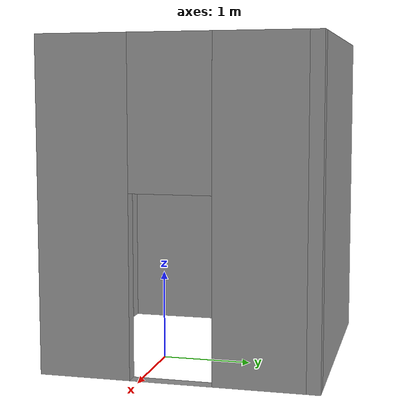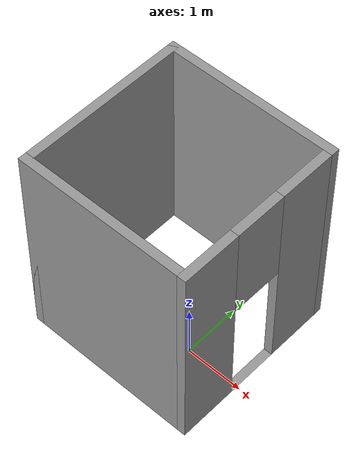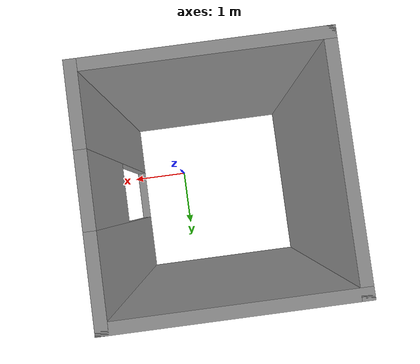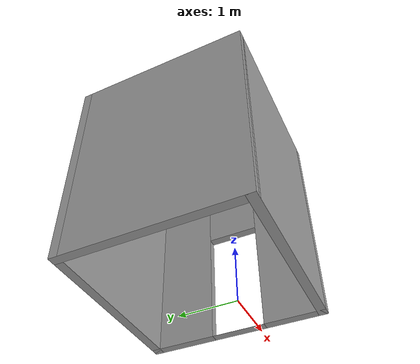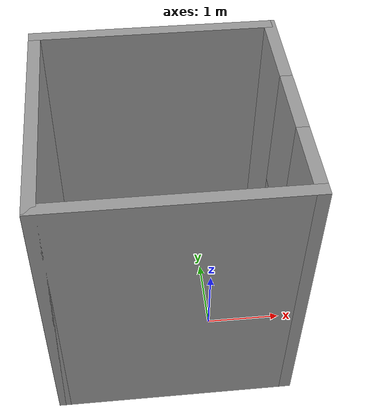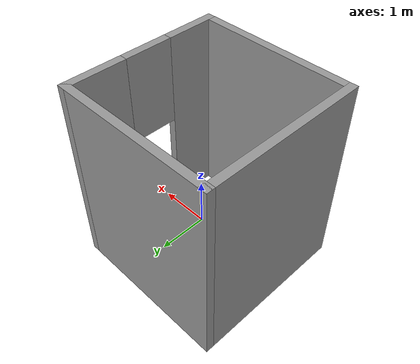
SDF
<?xml version='1.0'?>
<sdf version='1.6'>
  <model name='endoscopy_feet_model'>
    <pose>-0.579 0.399 0 0 -0 0</pose>
    <link name='Wall_0'>
      <pose>1.449 -0 0 0 -0 1.5708</pose>
      <visual name='Wall_0_Visual_0'>
        <pose>-1.01667 0 1.829 0 -0 0</pose>
        <geometry>
          <box>
            <size>1.01467 0.15 3.658</size>
          </box>
        </geometry>
        <material>
          <script>
            <uri>file://media/materials/scripts/gazebo.material</uri>
            <name>Gazebo/Grey</name>
          </script>
          <ambient>1 1 1 1</ambient>
        </material>
        <meta>
          <layer>0</layer>
        </meta>
      </visual>
      <collision name='Wall_0_Collision_0'>
        <geometry>
          <box>
            <size>1.01467 0.15 3.658</size>
          </box>
        </geometry>
        <pose>-1.01667 0 1.829 0 -0 0</pose>
      </collision>
      <visual name='Wall_0_Visual_1'>
        <pose>0.957333 0 1.829 0 -0 0</pose>
        <geometry>
          <box>
            <size>1.13333 0.15 3.658</size>
          </box>
        </geometry>
        <material>
          <script>
            <uri>file://media/materials/scripts/gazebo.material</uri>
            <name>Gazebo/Grey</name>
          </script>
          <ambient>1 1 1 1</ambient>
        </material>
        <meta>
          <layer>0</layer>
        </meta>
      </visual>
      <collision name='Wall_0_Collision_1'>
        <geometry>
          <box>
            <size>1.13333 0.15 3.658</size>
          </box>
        </geometry>
        <pose>0.957333 0 1.829 0 -0 0</pose>
      </collision>
      <visual name='Wall_0_Visual_2'>
        <pose>-0.059334 0 0 0 -0 0</pose>
        <geometry>
          <box>
            <size>0.9 0.15 0</size>
          </box>
        </geometry>
        <material>
          <script>
            <uri>file://media/materials/scripts/gazebo.material</uri>
            <name>Gazebo/Grey</name>
          </script>
          <ambient>1 1 1 1</ambient>
        </material>
        <meta>
          <layer>0</layer>
        </meta>
      </visual>
      <collision name='Wall_0_Collision_2'>
        <geometry>
          <box>
            <size>0.9 0.15 0</size>
          </box>
        </geometry>
        <pose>-0.059334 0 0 0 -0 0</pose>
      </collision>
      <visual name='Wall_0_Visual_3'>
        <pose>-0.059334 0 2.829 0 -0 0</pose>
        <geometry>
          <box>
            <size>0.9 0.15 1.658</size>
          </box>
        </geometry>
        <material>
          <script>
            <uri>file://media/materials/scripts/gazebo.material</uri>
            <name>Gazebo/Grey</name>
          </script>
          <ambient>1 1 1 1</ambient>
        </material>
        <meta>
          <layer>0</layer>
        </meta>
      </visual>
      <collision name='Wall_0_Collision_3'>
        <geometry>
          <box>
            <size>0.9 0.15 1.658</size>
          </box>
        </geometry>
        <pose>-0.059334 0 2.829 0 -0 0</pose>
      </collision>
    </link>
    <link name='Wall_2'>
      <collision name='Wall_2_Collision'>
        <geometry>
          <box>
            <size>3.048 0.15 3.658</size>
          </box>
        </geometry>
        <pose>0 0 1.829 0 -0 0</pose>
      </collision>
      <visual name='Wall_2_Visual'>
        <pose>0 0 1.829 0 -0 0</pose>
        <geometry>
          <box>
            <size>3.048 0.15 3.658</size>
          </box>
        </geometry>
        <material>
          <script>
            <uri>file://media/materials/scripts/gazebo.material</uri>
            <name>Gazebo/Grey</name>
          </script>
          <ambient>1 1 1 1</ambient>
        </material>
        <meta>
          <layer>0</layer>
        </meta>
      </visual>
      <pose>0 1.449 0 0 -0 3.14159</pose>
    </link>
    <link name='Wall_4'>
      <collision name='Wall_4_Collision'>
        <geometry>
          <box>
            <size>3.048 0.15 3.658</size>
          </box>
        </geometry>
        <pose>0 0 1.829 0 -0 0</pose>
      </collision>
      <visual name='Wall_4_Visual'>
        <pose>0 0 1.829 0 -0 0</pose>
        <geometry>
          <box>
            <size>3.048 0.15 3.658</size>
          </box>
        </geometry>
        <material>
          <script>
            <uri>file://media/materials/scripts/gazebo.material</uri>
            <name>Gazebo/Grey</name>
          </script>
          <ambient>1 1 1 1</ambient>
        </material>
        <meta>
          <layer>0</layer>
        </meta>
      </visual>
      <pose>-1.449 -0 0 0 -0 -1.5708</pose>
    </link>
    <link name='Wall_6'>
      <collision name='Wall_6_Collision'>
        <geometry>
          <box>
            <size>3.048 0.15 3.658</size>
          </box>
        </geometry>
        <pose>0 0 1.829 0 -0 0</pose>
      </collision>
      <visual name='Wall_6_Visual'>
        <pose>0 0 1.829 0 -0 0</pose>
        <geometry>
          <box>
            <size>3.048 0.15 3.658</size>
          </box>
        </geometry>
        <material>
          <script>
            <uri>file://media/materials/scripts/gazebo.material</uri>
            <name>Gazebo/Grey</name>
          </script>
          <ambient>1 1 1 1</ambient>
        </material>
        <meta>
          <layer>0</layer>
        </meta>
      </visual>
      <pose>0 -1.449 0 0 -0 0</pose>
    </link>
    <static>1</static>
  </model>
</sdf>
